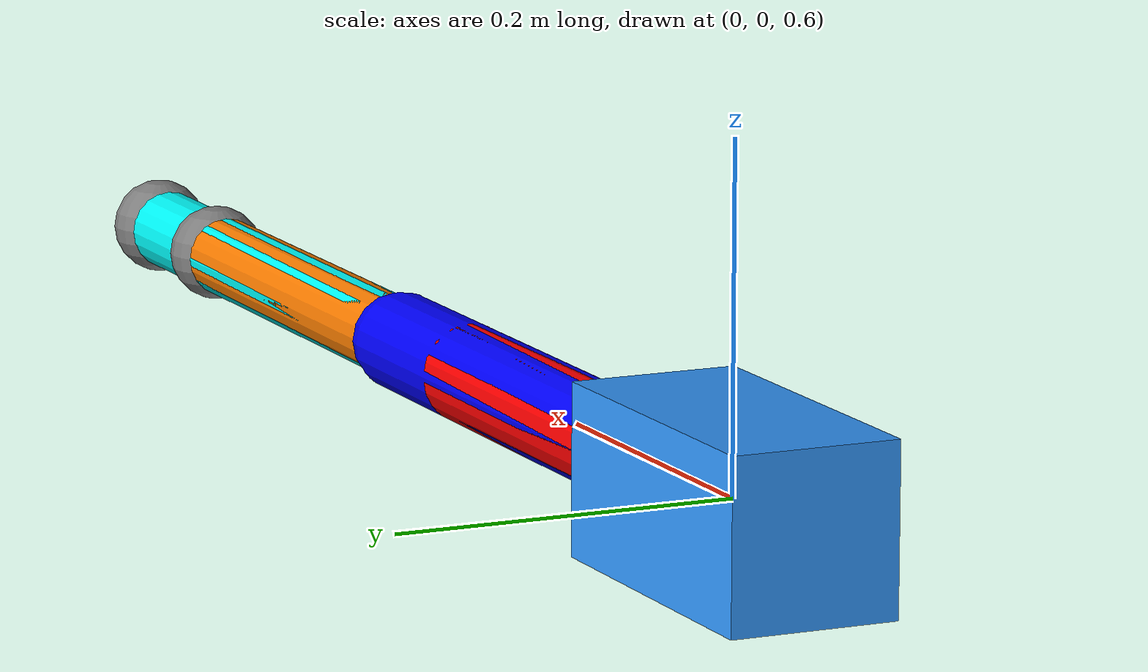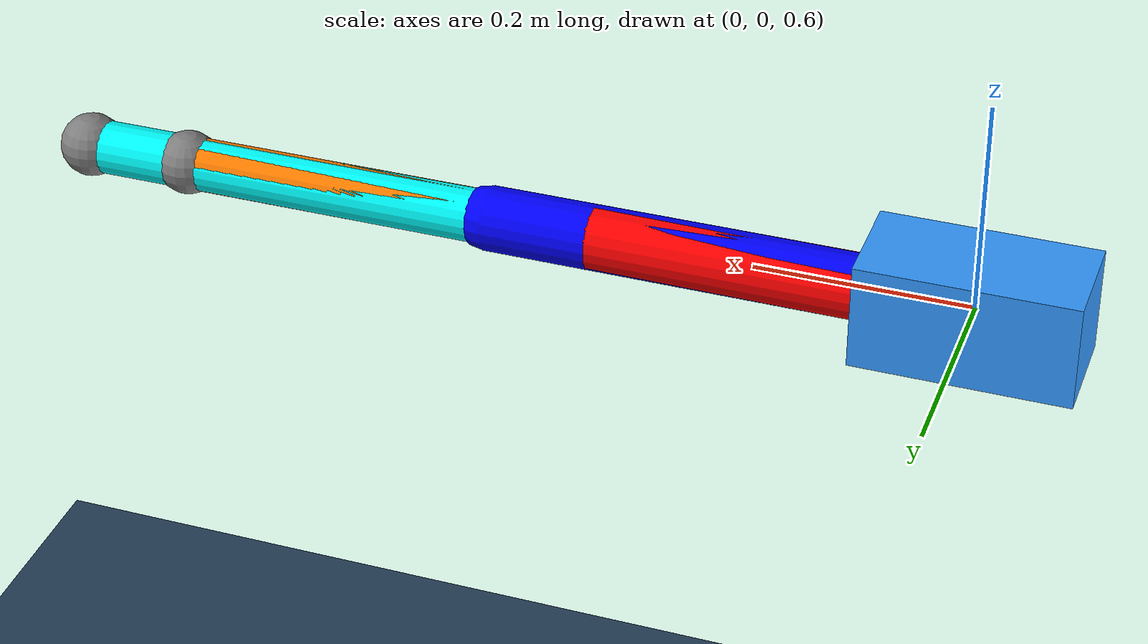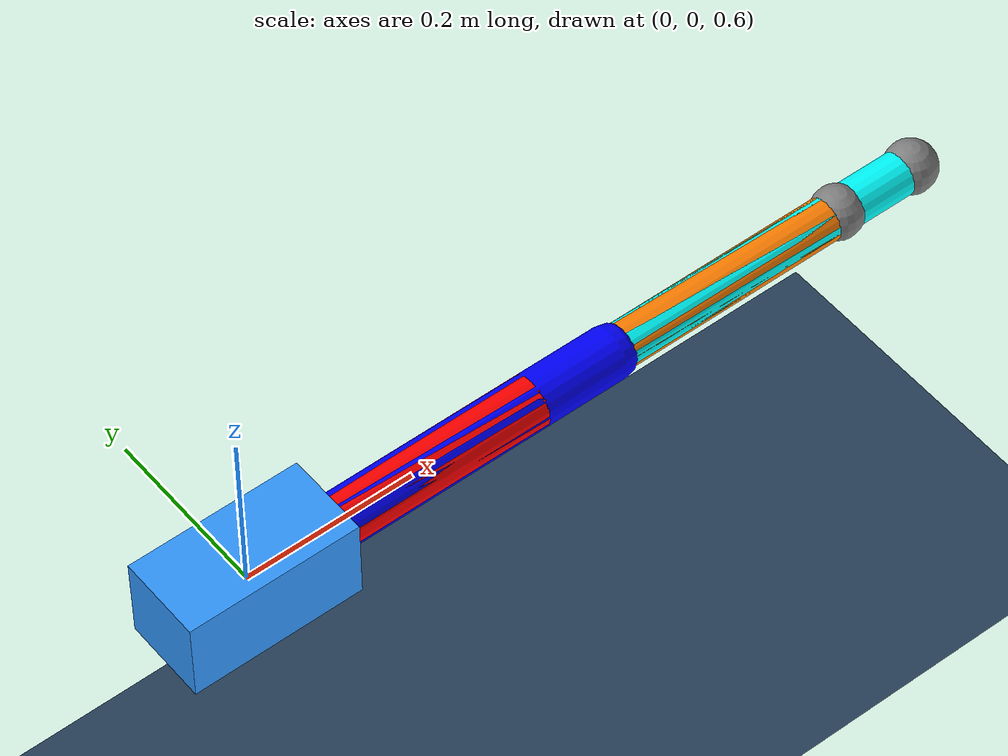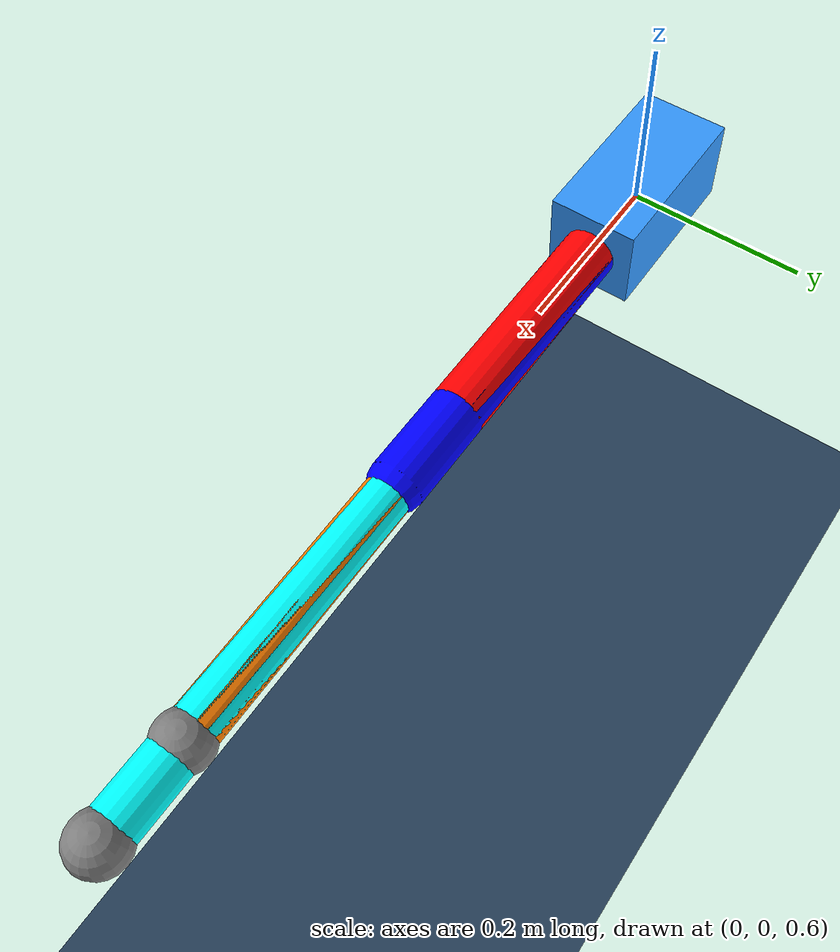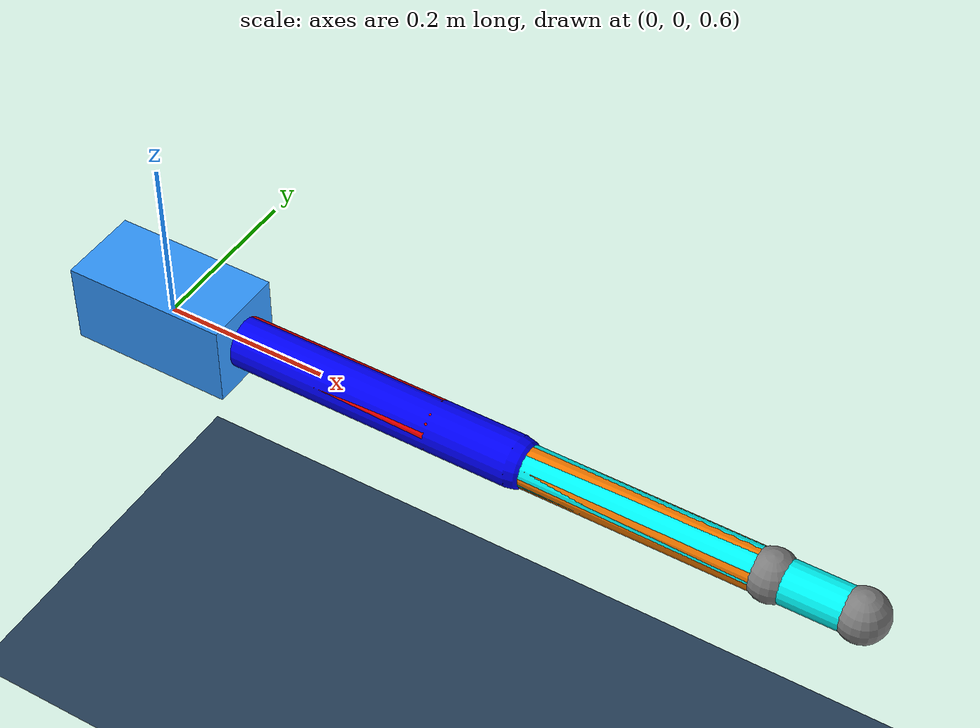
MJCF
<mujoco model="FiveBar2D">

  <compiler inertiafromgeom="true" angle="radian"/>
  <option timestep="0.001" integrator="implicit"/>

  <default>
    <joint damping="0.1"/>
    <geom friction="2 0.005 0.0001" contype="1" conaffinity="2"/>
  </default>

  <asset>
    <texture name="grid" type="2d" builtin="checker" rgb1=".1 .2 .3" rgb2=".2 .3 .4" width="300" height="300" mark="edge" markrgb=".2 .3 .4"/>
    <material name="ground" texture="grid" texrepeat="1 1" texuniform="true" reflectance="0.1"/>

  </asset>

  <visual>
    <global offwidth="1920" offheight="1080"/>
  </visual>

  <worldbody>

    <geom name="floor"
      type="plane"
      size="5 5 0.25"
      material="ground"
      contype="2"
      conaffinity="1"/>

    <body name="root" pos="0 0 0.6">

      <joint name="slide_x" type="slide" axis="1 0 0" />
      <joint name="slide_z" type="slide" axis="0 0 1"/>

      <body name="base">

        <geom name="torso"
              type="box"
              size="0.1 0.05 0.05"
              rgba="0.2 0.6 1 1"
              mass="2"/>

        <!-- LEFT HIP (offset in X) -->
        <body name="l1_left" pos="-0.05 0 0">

          <joint name="hip_left"
                 type="hinge"
                 axis="0 -1 0"/>

          <geom name="thigh_left"
                type="capsule"
                fromto="0 0 0 0.4 0 0"
                size="0.03"
                rgba="1 0 0 1"
                mass="1"/>

          <body name="l2_left" pos="0.4 0 0">

            <joint name="knee_left"
                   type="hinge"
                   axis="0 -1 0"/>

            <geom name="shank_left"
                  type="capsule"
                  fromto="0 0 0 0.4 0 0"
                  size="0.025"
                  rgba="1 0.5 0 1"
                  mass="0.5"/>
            <geom name="foot_left"
                    type="sphere"
                    size="0.03"
                    pos="0.4 0 0"
                    mass="0"/>

            <site name="left_tip" pos="0.4 0 0"/>

          </body>
        </body>

        <!-- RIGHT HIP (offset in X opposite side) -->
        <body name="l1_right" pos="0.05 0 0">

          <joint name="hip_right"
                 type="hinge"
                 axis="0 -1 0"/>

          <geom name="thigh_right"
                type="capsule"
                fromto="0 0 0 0.4 0 0"
                size="0.03"
                rgba="0 0 1 1"
                mass="1"/>

          <body name="l2_right" pos="0.4 0 0">

            <joint name="knee_right"
                   type="hinge"
                   axis="0 -1 0"/>

            <geom name="shank_right"
                  type="capsule"
                  fromto="0 0 0 0.4 0 0"
                  size="0.025"
                  rgba="0 1 1 1"
                  mass="0.5"/>

            <geom name="foot_right"
                type="sphere"
                size="0.03"
                pos="0.4 0 0"
                mass="0"/>

            <site name="right_tip" pos="0.4 0 0"/>

          </body>
        </body>

      </body>
    </body>
  </worldbody>

  <!-- Coupler constraint -->
  <equality>
    <connect site1="left_tip"
             site2="right_tip"
             solref="0.01 1"
             solimp="0.9 0.95 0.001"/>
  </equality>

  <actuator>
    <motor name="motor_left"
           joint="hip_left"
           ctrlrange="-10000 10000"/>
    <motor name="motor_right"
           joint="hip_right"
           ctrlrange="-10000 10000"/>
  </actuator>

</mujoco>
